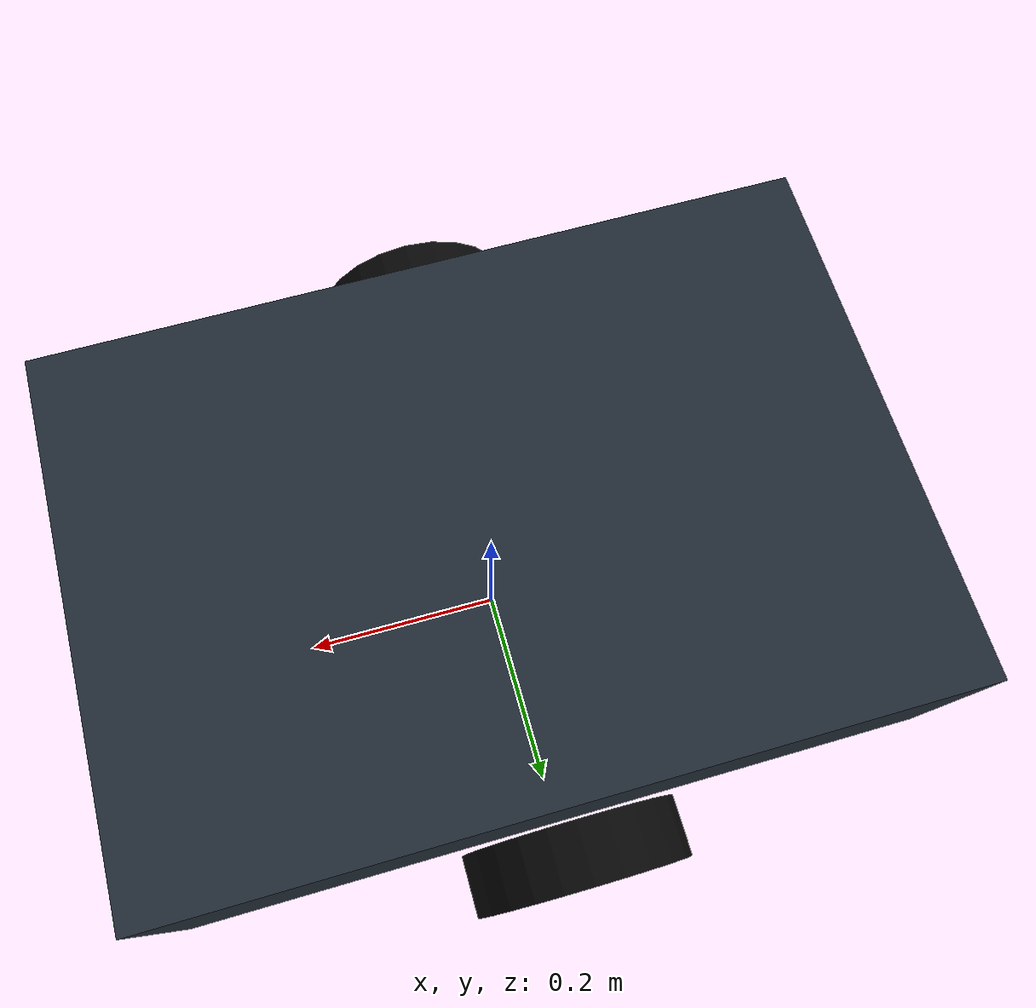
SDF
<?xml version="1.0"?>
<sdf version="1.10">
  <model name="ball_picker">
    <pose>0 0 0 0 0 0</pose>
    <canonical_link>base_link</canonical_link>
    <self_collide>false</self_collide>

    <link name="base_link">
      <inertial>
        <mass>12.0</mass>
        <inertia>
          <ixx>0.35</ixx>
          <iyy>0.45</iyy>
          <izz>0.55</izz>
          <ixy>0</ixy>
          <ixz>0</ixz>
          <iyz>0</iyz>
        </inertia>
      </inertial>

      <collision name="body_collision">
        <pose>0 0 0.13 0 0 0</pose>
        <geometry>
          <box>
            <size>0.72 0.50 0.21</size>
          </box>
        </geometry>
        <surface>
          <friction>
            <ode>
              <mu>0.8</mu>
              <mu2>0.8</mu2>
            </ode>
          </friction>
        </surface>
      </collision>

      <visual name="body_visual">
        <pose>0 0 0.18 0 0 0</pose>
        <geometry>
          <box>
            <size>0.72 0.50 0.20</size>
          </box>
        </geometry>
        <material>
          <ambient>0.10 0.12 0.15 1</ambient>
          <diffuse>0.14 0.18 0.22 1</diffuse>
          <specular>0.25 0.25 0.25 1</specular>
        </material>
      </visual>

      <visual name="left_wheel_visual">
        <pose>0 0.285 0.125 1.5708 0 0</pose>
        <geometry>
          <cylinder>
            <radius>0.10</radius>
            <length>0.055</length>
          </cylinder>
        </geometry>
        <material>
          <ambient>0.02 0.02 0.02 1</ambient>
          <diffuse>0.03 0.03 0.03 1</diffuse>
        </material>
      </visual>

      <visual name="right_wheel_visual">
        <pose>0 -0.285 0.125 1.5708 0 0</pose>
        <geometry>
          <cylinder>
            <radius>0.10</radius>
            <length>0.055</length>
          </cylinder>
        </geometry>
        <material>
          <ambient>0.02 0.02 0.02 1</ambient>
          <diffuse>0.03 0.03 0.03 1</diffuse>
        </material>
      </visual>
    </link>

    <plugin filename="gz-sim-velocity-control-system" name="gz::sim::systems::VelocityControl">
      <topic>/ball_picker/cmd_vel</topic>
    </plugin>
    <plugin filename="gz-sim-odometry-publisher-system" name="gz::sim::systems::OdometryPublisher">
      <odom_topic>/ball_picker/odom</odom_topic>
      <odom_frame>odom</odom_frame>
      <robot_base_frame>base_link</robot_base_frame>
      <dimensions>2</dimensions>
      <odom_publish_frequency>30</odom_publish_frequency>
    </plugin>
  </model>
</sdf>
